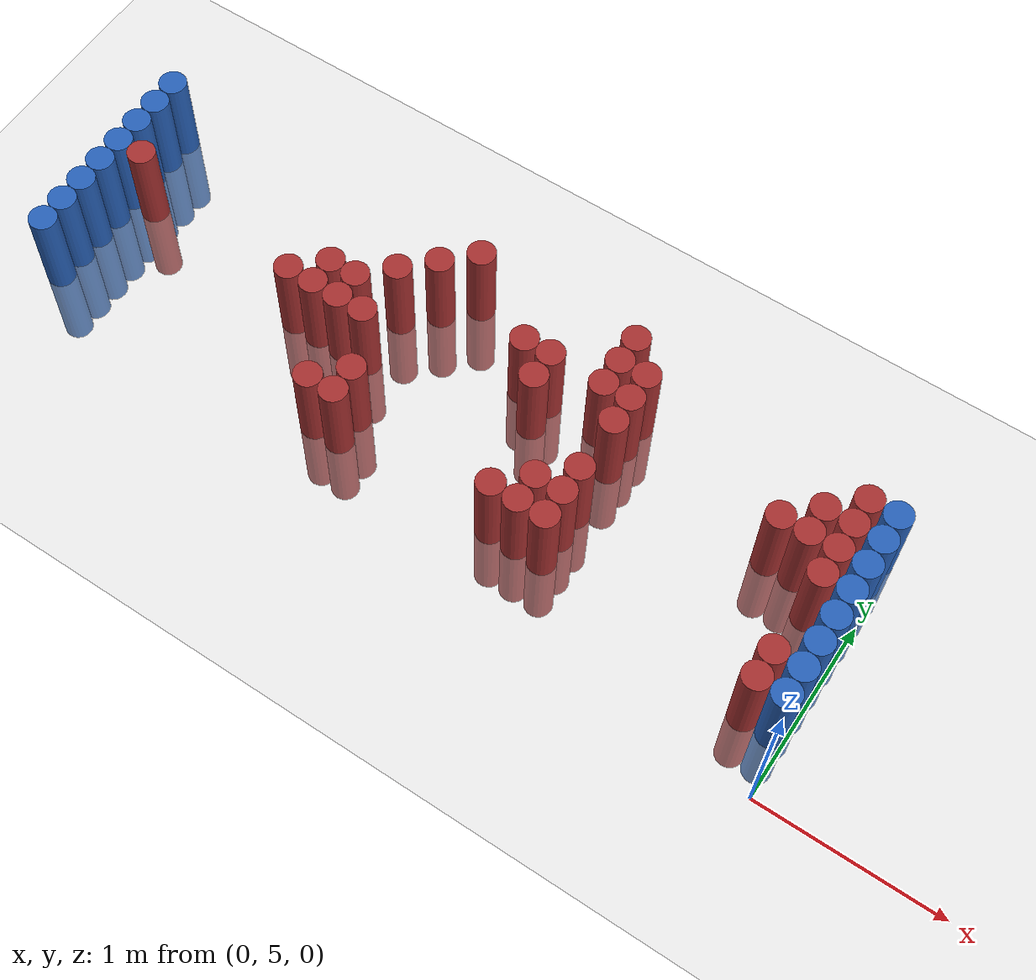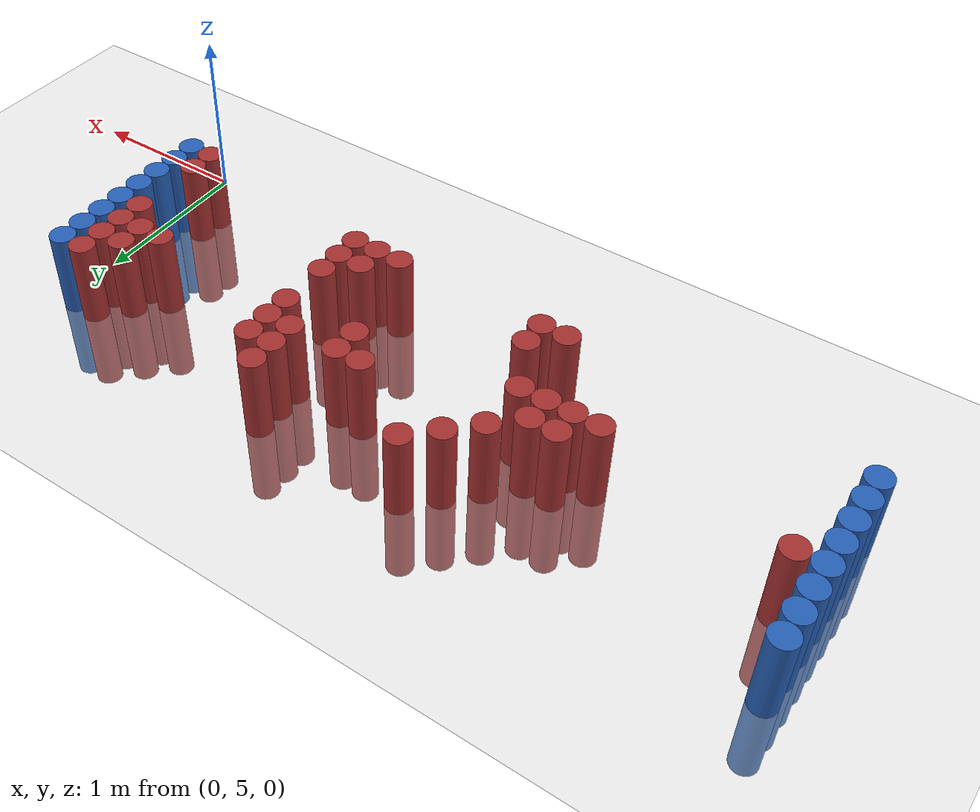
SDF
<sdf version="1.6">
 <world name="default">
  <model name="ground_plane">
   <static>1</static>
   <link name="link">
    <collision name="collision">
     <geometry><plane><normal>0 0 1</normal><size>100 100</size></plane></geometry>
     <surface><friction><ode><mu>100</mu><mu2>50</mu2></ode></friction></surface>
    </collision>
    <visual name="visual">
     <cast_shadows>0</cast_shadows>
     <geometry><plane><normal>0 0 1</normal><size>100 100</size></plane></geometry>
     <material>
      <script><uri>file://media/materials/scripts/gazebo.material</uri><name>Gazebo/Grey</name></script>
     </material>
    </visual>
   </link>
  </model>
  <model name="unit_cylinder_98">
   <static>1</static>
   <pose>-4.425000 5.475000 0.000000 0.000000 0.000000 0.000000</pose>
   <link name="link">
    <inertial>
     <mass>1</mass>
     <inertia><ixx>0.145833</ixx><ixy>0</ixy><ixz>0</ixz><iyy>0.145833</iyy><iyz>0</iyz><izz>0.125</izz></inertia>
    </inertial>
    <collision name="collision">
     <geometry><cylinder><radius>0.075000</radius><length>1</length></cylinder></geometry>
    </collision>
    <visual name="visual">
     <geometry><cylinder><radius>0.075000</radius><length>1</length></cylinder></geometry>
     <material>
      <ambient>0.152000 0.379000 0.720000 1</ambient>
      <diffuse>0.152000 0.379000 0.720000 1</diffuse>
     </material>
     <material>
      <script><name>Gazebo/Grey</name><uri>file://media/materials/scripts/gazebo.material</uri></script>
     </material>
    </visual>
   </link>
  </model>
  <model name="unit_cylinder_99">
   <static>1</static>
   <pose>-4.425000 5.625000 0.000000 0.000000 0.000000 0.000000</pose>
   <link name="link">
    <inertial>
     <mass>1</mass>
     <inertia><ixx>0.145833</ixx><ixy>0</ixy><ixz>0</ixz><iyy>0.145833</iyy><iyz>0</iyz><izz>0.125</izz></inertia>
    </inertial>
    <collision name="collision">
     <geometry><cylinder><radius>0.075000</radius><length>1</length></cylinder></geometry>
    </collision>
    <visual name="visual">
     <geometry><cylinder><radius>0.075000</radius><length>1</length></cylinder></geometry>
     <material>
      <ambient>0.152000 0.379000 0.720000 1</ambient>
      <diffuse>0.152000 0.379000 0.720000 1</diffuse>
     </material>
     <material>
      <script><name>Gazebo/Grey</name><uri>file://media/materials/scripts/gazebo.material</uri></script>
     </material>
    </visual>
   </link>
  </model>
  <model name="unit_cylinder_100">
   <static>1</static>
   <pose>-4.425000 5.775000 0.000000 0.000000 0.000000 0.000000</pose>
   <link name="link">
    <inertial>
     <mass>1</mass>
     <inertia><ixx>0.145833</ixx><ixy>0</ixy><ixz>0</ixz><iyy>0.145833</iyy><iyz>0</iyz><izz>0.125</izz></inertia>
    </inertial>
    <collision name="collision">
     <geometry><cylinder><radius>0.075000</radius><length>1</length></cylinder></geometry>
    </collision>
    <visual name="visual">
     <geometry><cylinder><radius>0.075000</radius><length>1</length></cylinder></geometry>
     <material>
      <ambient>0.152000 0.379000 0.720000 1</ambient>
      <diffuse>0.152000 0.379000 0.720000 1</diffuse>
     </material>
     <material>
      <script><name>Gazebo/Grey</name><uri>file://media/materials/scripts/gazebo.material</uri></script>
     </material>
    </visual>
   </link>
  </model>
  <model name="unit_cylinder_101">
   <static>1</static>
   <pose>-4.425000 5.925000 0.000000 0.000000 0.000000 0.000000</pose>
   <link name="link">
    <inertial>
     <mass>1</mass>
     <inertia><ixx>0.145833</ixx><ixy>0</ixy><ixz>0</ixz><iyy>0.145833</iyy><iyz>0</iyz><izz>0.125</izz></inertia>
    </inertial>
    <collision name="collision">
     <geometry><cylinder><radius>0.075000</radius><length>1</length></cylinder></geometry>
    </collision>
    <visual name="visual">
     <geometry><cylinder><radius>0.075000</radius><length>1</length></cylinder></geometry>
     <material>
      <ambient>0.152000 0.379000 0.720000 1</ambient>
      <diffuse>0.152000 0.379000 0.720000 1</diffuse>
     </material>
     <material>
      <script><name>Gazebo/Grey</name><uri>file://media/materials/scripts/gazebo.material</uri></script>
     </material>
    </visual>
   </link>
  </model>
  <model name="unit_cylinder_102">
   <static>1</static>
   <pose>-4.425000 6.075000 0.000000 0.000000 0.000000 0.000000</pose>
   <link name="link">
    <inertial>
     <mass>1</mass>
     <inertia><ixx>0.145833</ixx><ixy>0</ixy><ixz>0</ixz><iyy>0.145833</iyy><iyz>0</iyz><izz>0.125</izz></inertia>
    </inertial>
    <collision name="collision">
     <geometry><cylinder><radius>0.075000</radius><length>1</length></cylinder></geometry>
    </collision>
    <visual name="visual">
     <geometry><cylinder><radius>0.075000</radius><length>1</length></cylinder></geometry>
     <material>
      <ambient>0.152000 0.379000 0.720000 1</ambient>
      <diffuse>0.152000 0.379000 0.720000 1</diffuse>
     </material>
     <material>
      <script><name>Gazebo/Grey</name><uri>file://media/materials/scripts/gazebo.material</uri></script>
     </material>
    </visual>
   </link>
  </model>
  <model name="unit_cylinder_103">
   <static>1</static>
   <pose>-4.425000 6.225000 0.000000 0.000000 0.000000 0.000000</pose>
   <link name="link">
    <inertial>
     <mass>1</mass>
     <inertia><ixx>0.145833</ixx><ixy>0</ixy><ixz>0</ixz><iyy>0.145833</iyy><iyz>0</iyz><izz>0.125</izz></inertia>
    </inertial>
    <collision name="collision">
     <geometry><cylinder><radius>0.075000</radius><length>1</length></cylinder></geometry>
    </collision>
    <visual name="visual">
     <geometry><cylinder><radius>0.075000</radius><length>1</length></cylinder></geometry>
     <material>
      <ambient>0.152000 0.379000 0.720000 1</ambient>
      <diffuse>0.152000 0.379000 0.720000 1</diffuse>
     </material>
     <material>
      <script><name>Gazebo/Grey</name><uri>file://media/materials/scripts/gazebo.material</uri></script>
     </material>
    </visual>
   </link>
  </model>
  <model name="unit_cylinder_104">
   <static>1</static>
   <pose>-4.425000 6.375000 0.000000 0.000000 0.000000 0.000000</pose>
   <link name="link">
    <inertial>
     <mass>1</mass>
     <inertia><ixx>0.145833</ixx><ixy>0</ixy><ixz>0</ixz><iyy>0.145833</iyy><iyz>0</iyz><izz>0.125</izz></inertia>
    </inertial>
    <collision name="collision">
     <geometry><cylinder><radius>0.075000</radius><length>1</length></cylinder></geometry>
    </collision>
    <visual name="visual">
     <geometry><cylinder><radius>0.075000</radius><length>1</length></cylinder></geometry>
     <material>
      <ambient>0.152000 0.379000 0.720000 1</ambient>
      <diffuse>0.152000 0.379000 0.720000 1</diffuse>
     </material>
     <material>
      <script><name>Gazebo/Grey</name><uri>file://media/materials/scripts/gazebo.material</uri></script>
     </material>
    </visual>
   </link>
  </model>
  <model name="unit_cylinder_105">
   <static>1</static>
   <pose>-4.425000 6.525000 0.000000 0.000000 0.000000 0.000000</pose>
   <link name="link">
    <inertial>
     <mass>1</mass>
     <inertia><ixx>0.145833</ixx><ixy>0</ixy><ixz>0</ixz><iyy>0.145833</iyy><iyz>0</iyz><izz>0.125</izz></inertia>
    </inertial>
    <collision name="collision">
     <geometry><cylinder><radius>0.075000</radius><length>1</length></cylinder></geometry>
    </collision>
    <visual name="visual">
     <geometry><cylinder><radius>0.075000</radius><length>1</length></cylinder></geometry>
     <material>
      <ambient>0.152000 0.379000 0.720000 1</ambient>
      <diffuse>0.152000 0.379000 0.720000 1</diffuse>
     </material>
     <material>
      <script><name>Gazebo/Grey</name><uri>file://media/materials/scripts/gazebo.material</uri></script>
     </material>
    </visual>
   </link>
  </model>
  <model name="unit_cylinder_127">
   <static>1</static>
   <pose>-4.275000 6.075000 0.000000 0.000000 0.000000 0.000000</pose>
   <link name="link">
    <inertial>
     <mass>1</mass>
     <inertia><ixx>0.145833</ixx><ixy>0</ixy><ixz>0</ixz><iyy>0.145833</iyy><iyz>0</iyz><izz>0.125</izz></inertia>
    </inertial>
    <collision name="collision">
     <geometry><cylinder><radius>0.075000</radius><length>1</length></cylinder></geometry>
    </collision>
    <visual name="visual">
     <geometry><cylinder><radius>0.075000</radius><length>1</length></cylinder></geometry>
     <material>
      <ambient>0.648000 0.192000 0.192000 1</ambient>
      <diffuse>0.648000 0.192000 0.192000 1</diffuse>
     </material>
     <material>
      <script><name>Gazebo/Grey</name><uri>file://media/materials/scripts/gazebo.material</uri></script>
     </material>
    </visual>
   </link>
  </model>
  <model name="unit_cylinder_168">
   <static>1</static>
   <pose>-3.225000 5.925000 0.000000 0.000000 0.000000 0.000000</pose>
   <link name="link">
    <inertial>
     <mass>1</mass>
     <inertia><ixx>0.145833</ixx><ixy>0</ixy><ixz>0</ixz><iyy>0.145833</iyy><iyz>0</iyz><izz>0.125</izz></inertia>
    </inertial>
    <collision name="collision">
     <geometry><cylinder><radius>0.075000</radius><length>1</length></cylinder></geometry>
    </collision>
    <visual name="visual">
     <geometry><cylinder><radius>0.075000</radius><length>1</length></cylinder></geometry>
     <material>
      <ambient>0.648000 0.192000 0.192000 1</ambient>
      <diffuse>0.648000 0.192000 0.192000 1</diffuse>
     </material>
     <material>
      <script><name>Gazebo/Grey</name><uri>file://media/materials/scripts/gazebo.material</uri></script>
     </material>
    </visual>
   </link>
  </model>
  <model name="unit_cylinder_172">
   <static>1</static>
   <pose>-3.075000 5.925000 0.000000 0.000000 0.000000 0.000000</pose>
   <link name="link">
    <inertial>
     <mass>1</mass>
     <inertia><ixx>0.145833</ixx><ixy>0</ixy><ixz>0</ixz><iyy>0.145833</iyy><iyz>0</iyz><izz>0.125</izz></inertia>
    </inertial>
    <collision name="collision">
     <geometry><cylinder><radius>0.075000</radius><length>1</length></cylinder></geometry>
    </collision>
    <visual name="visual">
     <geometry><cylinder><radius>0.075000</radius><length>1</length></cylinder></geometry>
     <material>
      <ambient>0.648000 0.192000 0.192000 1</ambient>
      <diffuse>0.648000 0.192000 0.192000 1</diffuse>
     </material>
     <material>
      <script><name>Gazebo/Grey</name><uri>file://media/materials/scripts/gazebo.material</uri></script>
     </material>
    </visual>
   </link>
  </model>
  <model name="unit_cylinder_173">
   <static>1</static>
   <pose>-3.075000 6.075000 0.000000 0.000000 0.000000 0.000000</pose>
   <link name="link">
    <inertial>
     <mass>1</mass>
     <inertia><ixx>0.145833</ixx><ixy>0</ixy><ixz>0</ixz><iyy>0.145833</iyy><iyz>0</iyz><izz>0.125</izz></inertia>
    </inertial>
    <collision name="collision">
     <geometry><cylinder><radius>0.075000</radius><length>1</length></cylinder></geometry>
    </collision>
    <visual name="visual">
     <geometry><cylinder><radius>0.075000</radius><length>1</length></cylinder></geometry>
     <material>
      <ambient>0.648000 0.192000 0.192000 1</ambient>
      <diffuse>0.648000 0.192000 0.192000 1</diffuse>
     </material>
     <material>
      <script><name>Gazebo/Grey</name><uri>file://media/materials/scripts/gazebo.material</uri></script>
     </material>
    </visual>
   </link>
  </model>
  <model name="unit_cylinder_177">
   <static>1</static>
   <pose>-2.925000 5.925000 0.000000 0.000000 0.000000 0.000000</pose>
   <link name="link">
    <inertial>
     <mass>1</mass>
     <inertia><ixx>0.145833</ixx><ixy>0</ixy><ixz>0</ixz><iyy>0.145833</iyy><iyz>0</iyz><izz>0.125</izz></inertia>
    </inertial>
    <collision name="collision">
     <geometry><cylinder><radius>0.075000</radius><length>1</length></cylinder></geometry>
    </collision>
    <visual name="visual">
     <geometry><cylinder><radius>0.075000</radius><length>1</length></cylinder></geometry>
     <material>
      <ambient>0.648000 0.192000 0.192000 1</ambient>
      <diffuse>0.648000 0.192000 0.192000 1</diffuse>
     </material>
     <material>
      <script><name>Gazebo/Grey</name><uri>file://media/materials/scripts/gazebo.material</uri></script>
     </material>
    </visual>
   </link>
  </model>
  <model name="unit_cylinder_178">
   <static>1</static>
   <pose>-2.925000 6.075000 0.000000 0.000000 0.000000 0.000000</pose>
   <link name="link">
    <inertial>
     <mass>1</mass>
     <inertia><ixx>0.145833</ixx><ixy>0</ixy><ixz>0</ixz><iyy>0.145833</iyy><iyz>0</iyz><izz>0.125</izz></inertia>
    </inertial>
    <collision name="collision">
     <geometry><cylinder><radius>0.075000</radius><length>1</length></cylinder></geometry>
    </collision>
    <visual name="visual">
     <geometry><cylinder><radius>0.075000</radius><length>1</length></cylinder></geometry>
     <material>
      <ambient>0.648000 0.192000 0.192000 1</ambient>
      <diffuse>0.648000 0.192000 0.192000 1</diffuse>
     </material>
     <material>
      <script><name>Gazebo/Grey</name><uri>file://media/materials/scripts/gazebo.material</uri></script>
     </material>
    </visual>
   </link>
  </model>
  <model name="unit_cylinder_179">
   <static>1</static>
   <pose>-2.775000 5.475000 0.000000 0.000000 0.000000 0.000000</pose>
   <link name="link">
    <inertial>
     <mass>1</mass>
     <inertia><ixx>0.145833</ixx><ixy>0</ixy><ixz>0</ixz><iyy>0.145833</iyy><iyz>0</iyz><izz>0.125</izz></inertia>
    </inertial>
    <collision name="collision">
     <geometry><cylinder><radius>0.075000</radius><length>1</length></cylinder></geometry>
    </collision>
    <visual name="visual">
     <geometry><cylinder><radius>0.075000</radius><length>1</length></cylinder></geometry>
     <material>
      <ambient>0.648000 0.192000 0.192000 1</ambient>
      <diffuse>0.648000 0.192000 0.192000 1</diffuse>
     </material>
     <material>
      <script><name>Gazebo/Grey</name><uri>file://media/materials/scripts/gazebo.material</uri></script>
     </material>
    </visual>
   </link>
  </model>
  <model name="unit_cylinder_180">
   <static>1</static>
   <pose>-2.775000 5.925000 0.000000 0.000000 0.000000 0.000000</pose>
   <link name="link">
    <inertial>
     <mass>1</mass>
     <inertia><ixx>0.145833</ixx><ixy>0</ixy><ixz>0</ixz><iyy>0.145833</iyy><iyz>0</iyz><izz>0.125</izz></inertia>
    </inertial>
    <collision name="collision">
     <geometry><cylinder><radius>0.075000</radius><length>1</length></cylinder></geometry>
    </collision>
    <visual name="visual">
     <geometry><cylinder><radius>0.075000</radius><length>1</length></cylinder></geometry>
     <material>
      <ambient>0.648000 0.192000 0.192000 1</ambient>
      <diffuse>0.648000 0.192000 0.192000 1</diffuse>
     </material>
     <material>
      <script><name>Gazebo/Grey</name><uri>file://media/materials/scripts/gazebo.material</uri></script>
     </material>
    </visual>
   </link>
  </model>
  <model name="unit_cylinder_181">
   <static>1</static>
   <pose>-2.775000 6.225000 0.000000 0.000000 0.000000 0.000000</pose>
   <link name="link">
    <inertial>
     <mass>1</mass>
     <inertia><ixx>0.145833</ixx><ixy>0</ixy><ixz>0</ixz><iyy>0.145833</iyy><iyz>0</iyz><izz>0.125</izz></inertia>
    </inertial>
    <collision name="collision">
     <geometry><cylinder><radius>0.075000</radius><length>1</length></cylinder></geometry>
    </collision>
    <visual name="visual">
     <geometry><cylinder><radius>0.075000</radius><length>1</length></cylinder></geometry>
     <material>
      <ambient>0.648000 0.192000 0.192000 1</ambient>
      <diffuse>0.648000 0.192000 0.192000 1</diffuse>
     </material>
     <material>
      <script><name>Gazebo/Grey</name><uri>file://media/materials/scripts/gazebo.material</uri></script>
     </material>
    </visual>
   </link>
  </model>
  <model name="unit_cylinder_183">
   <static>1</static>
   <pose>-2.625000 5.475000 0.000000 0.000000 0.000000 0.000000</pose>
   <link name="link">
    <inertial>
     <mass>1</mass>
     <inertia><ixx>0.145833</ixx><ixy>0</ixy><ixz>0</ixz><iyy>0.145833</iyy><iyz>0</iyz><izz>0.125</izz></inertia>
    </inertial>
    <collision name="collision">
     <geometry><cylinder><radius>0.075000</radius><length>1</length></cylinder></geometry>
    </collision>
    <visual name="visual">
     <geometry><cylinder><radius>0.075000</radius><length>1</length></cylinder></geometry>
     <material>
      <ambient>0.648000 0.192000 0.192000 1</ambient>
      <diffuse>0.648000 0.192000 0.192000 1</diffuse>
     </material>
     <material>
      <script><name>Gazebo/Grey</name><uri>file://media/materials/scripts/gazebo.material</uri></script>
     </material>
    </visual>
   </link>
  </model>
  <model name="unit_cylinder_184">
   <static>1</static>
   <pose>-2.625000 5.625000 0.000000 0.000000 0.000000 0.000000</pose>
   <link name="link">
    <inertial>
     <mass>1</mass>
     <inertia><ixx>0.145833</ixx><ixy>0</ixy><ixz>0</ixz><iyy>0.145833</iyy><iyz>0</iyz><izz>0.125</izz></inertia>
    </inertial>
    <collision name="collision">
     <geometry><cylinder><radius>0.075000</radius><length>1</length></cylinder></geometry>
    </collision>
    <visual name="visual">
     <geometry><cylinder><radius>0.075000</radius><length>1</length></cylinder></geometry>
     <material>
      <ambient>0.648000 0.192000 0.192000 1</ambient>
      <diffuse>0.648000 0.192000 0.192000 1</diffuse>
     </material>
     <material>
      <script><name>Gazebo/Grey</name><uri>file://media/materials/scripts/gazebo.material</uri></script>
     </material>
    </visual>
   </link>
  </model>
  <model name="unit_cylinder_185">
   <static>1</static>
   <pose>-2.625000 6.375000 0.000000 0.000000 0.000000 0.000000</pose>
   <link name="link">
    <inertial>
     <mass>1</mass>
     <inertia><ixx>0.145833</ixx><ixy>0</ixy><ixz>0</ixz><iyy>0.145833</iyy><iyz>0</iyz><izz>0.125</izz></inertia>
    </inertial>
    <collision name="collision">
     <geometry><cylinder><radius>0.075000</radius><length>1</length></cylinder></geometry>
    </collision>
    <visual name="visual">
     <geometry><cylinder><radius>0.075000</radius><length>1</length></cylinder></geometry>
     <material>
      <ambient>0.648000 0.192000 0.192000 1</ambient>
      <diffuse>0.648000 0.192000 0.192000 1</diffuse>
     </material>
     <material>
      <script><name>Gazebo/Grey</name><uri>file://media/materials/scripts/gazebo.material</uri></script>
     </material>
    </visual>
   </link>
  </model>
  <model name="unit_cylinder_187">
   <static>1</static>
   <pose>-2.475000 6.525000 0.000000 0.000000 0.000000 0.000000</pose>
   <link name="link">
    <inertial>
     <mass>1</mass>
     <inertia><ixx>0.145833</ixx><ixy>0</ixy><ixz>0</ixz><iyy>0.145833</iyy><iyz>0</iyz><izz>0.125</izz></inertia>
    </inertial>
    <collision name="collision">
     <geometry><cylinder><radius>0.075000</radius><length>1</length></cylinder></geometry>
    </collision>
    <visual name="visual">
     <geometry><cylinder><radius>0.075000</radius><length>1</length></cylinder></geometry>
     <material>
      <ambient>0.648000 0.192000 0.192000 1</ambient>
      <diffuse>0.648000 0.192000 0.192000 1</diffuse>
     </material>
     <material>
      <script><name>Gazebo/Grey</name><uri>file://media/materials/scripts/gazebo.material</uri></script>
     </material>
    </visual>
   </link>
  </model>
  <model name="unit_cylinder_191">
   <static>1</static>
   <pose>-2.025000 6.225000 0.000000 0.000000 0.000000 0.000000</pose>
   <link name="link">
    <inertial>
     <mass>1</mass>
     <inertia><ixx>0.145833</ixx><ixy>0</ixy><ixz>0</ixz><iyy>0.145833</iyy><iyz>0</iyz><izz>0.125</izz></inertia>
    </inertial>
    <collision name="collision">
     <geometry><cylinder><radius>0.075000</radius><length>1</length></cylinder></geometry>
    </collision>
    <visual name="visual">
     <geometry><cylinder><radius>0.075000</radius><length>1</length></cylinder></geometry>
     <material>
      <ambient>0.648000 0.192000 0.192000 1</ambient>
      <diffuse>0.648000 0.192000 0.192000 1</diffuse>
     </material>
     <material>
      <script><name>Gazebo/Grey</name><uri>file://media/materials/scripts/gazebo.material</uri></script>
     </material>
    </visual>
   </link>
  </model>
  <model name="unit_cylinder_194">
   <static>1</static>
   <pose>-1.875000 6.075000 0.000000 0.000000 0.000000 0.000000</pose>
   <link name="link">
    <inertial>
     <mass>1</mass>
     <inertia><ixx>0.145833</ixx><ixy>0</ixy><ixz>0</ixz><iyy>0.145833</iyy><iyz>0</iyz><izz>0.125</izz></inertia>
    </inertial>
    <collision name="collision">
     <geometry><cylinder><radius>0.075000</radius><length>1</length></cylinder></geometry>
    </collision>
    <visual name="visual">
     <geometry><cylinder><radius>0.075000</radius><length>1</length></cylinder></geometry>
     <material>
      <ambient>0.648000 0.192000 0.192000 1</ambient>
      <diffuse>0.648000 0.192000 0.192000 1</diffuse>
     </material>
     <material>
      <script><name>Gazebo/Grey</name><uri>file://media/materials/scripts/gazebo.material</uri></script>
     </material>
    </visual>
   </link>
  </model>
  <model name="unit_cylinder_195">
   <static>1</static>
   <pose>-1.875000 6.225000 0.000000 0.000000 0.000000 0.000000</pose>
   <link name="link">
    <inertial>
     <mass>1</mass>
     <inertia><ixx>0.145833</ixx><ixy>0</ixy><ixz>0</ixz><iyy>0.145833</iyy><iyz>0</iyz><izz>0.125</izz></inertia>
    </inertial>
    <collision name="collision">
     <geometry><cylinder><radius>0.075000</radius><length>1</length></cylinder></geometry>
    </collision>
    <visual name="visual">
     <geometry><cylinder><radius>0.075000</radius><length>1</length></cylinder></geometry>
     <material>
      <ambient>0.648000 0.192000 0.192000 1</ambient>
      <diffuse>0.648000 0.192000 0.192000 1</diffuse>
     </material>
     <material>
      <script><name>Gazebo/Grey</name><uri>file://media/materials/scripts/gazebo.material</uri></script>
     </material>
    </visual>
   </link>
  </model>
  <model name="unit_cylinder_201">
   <static>1</static>
   <pose>-1.725000 5.475000 0.000000 0.000000 0.000000 0.000000</pose>
   <link name="link">
    <inertial>
     <mass>1</mass>
     <inertia><ixx>0.145833</ixx><ixy>0</ixy><ixz>0</ixz><iyy>0.145833</iyy><iyz>0</iyz><izz>0.125</izz></inertia>
    </inertial>
    <collision name="collision">
     <geometry><cylinder><radius>0.075000</radius><length>1</length></cylinder></geometry>
    </collision>
    <visual name="visual">
     <geometry><cylinder><radius>0.075000</radius><length>1</length></cylinder></geometry>
     <material>
      <ambient>0.648000 0.192000 0.192000 1</ambient>
      <diffuse>0.648000 0.192000 0.192000 1</diffuse>
     </material>
     <material>
      <script><name>Gazebo/Grey</name><uri>file://media/materials/scripts/gazebo.material</uri></script>
     </material>
    </visual>
   </link>
  </model>
  <model name="unit_cylinder_210">
   <static>1</static>
   <pose>-1.575000 5.475000 0.000000 0.000000 0.000000 0.000000</pose>
   <link name="link">
    <inertial>
     <mass>1</mass>
     <inertia><ixx>0.145833</ixx><ixy>0</ixy><ixz>0</ixz><iyy>0.145833</iyy><iyz>0</iyz><izz>0.125</izz></inertia>
    </inertial>
    <collision name="collision">
     <geometry><cylinder><radius>0.075000</radius><length>1</length></cylinder></geometry>
    </collision>
    <visual name="visual">
     <geometry><cylinder><radius>0.075000</radius><length>1</length></cylinder></geometry>
     <material>
      <ambient>0.648000 0.192000 0.192000 1</ambient>
      <diffuse>0.648000 0.192000 0.192000 1</diffuse>
     </material>
     <material>
      <script><name>Gazebo/Grey</name><uri>file://media/materials/scripts/gazebo.material</uri></script>
     </material>
    </visual>
   </link>
  </model>
  <model name="unit_cylinder_211">
   <static>1</static>
   <pose>-1.575000 5.625000 0.000000 0.000000 0.000000 0.000000</pose>
   <link name="link">
    <inertial>
     <mass>1</mass>
     <inertia><ixx>0.145833</ixx><ixy>0</ixy><ixz>0</ixz><iyy>0.145833</iyy><iyz>0</iyz><izz>0.125</izz></inertia>
    </inertial>
    <collision name="collision">
     <geometry><cylinder><radius>0.075000</radius><length>1</length></cylinder></geometry>
    </collision>
    <visual name="visual">
     <geometry><cylinder><radius>0.075000</radius><length>1</length></cylinder></geometry>
     <material>
      <ambient>0.648000 0.192000 0.192000 1</ambient>
      <diffuse>0.648000 0.192000 0.192000 1</diffuse>
     </material>
     <material>
      <script><name>Gazebo/Grey</name><uri>file://media/materials/scripts/gazebo.material</uri></script>
     </material>
    </visual>
   </link>
  </model>
  <model name="unit_cylinder_212">
   <static>1</static>
   <pose>-1.575000 6.225000 0.000000 0.000000 0.000000 0.000000</pose>
   <link name="link">
    <inertial>
     <mass>1</mass>
     <inertia><ixx>0.145833</ixx><ixy>0</ixy><ixz>0</ixz><iyy>0.145833</iyy><iyz>0</iyz><izz>0.125</izz></inertia>
    </inertial>
    <collision name="collision">
     <geometry><cylinder><radius>0.075000</radius><length>1</length></cylinder></geometry>
    </collision>
    <visual name="visual">
     <geometry><cylinder><radius>0.075000</radius><length>1</length></cylinder></geometry>
     <material>
      <ambient>0.648000 0.192000 0.192000 1</ambient>
      <diffuse>0.648000 0.192000 0.192000 1</diffuse>
     </material>
     <material>
      <script><name>Gazebo/Grey</name><uri>file://media/materials/scripts/gazebo.material</uri></script>
     </material>
    </visual>
   </link>
  </model>
  <model name="unit_cylinder_213">
   <static>1</static>
   <pose>-1.575000 6.375000 0.000000 0.000000 0.000000 0.000000</pose>
   <link name="link">
    <inertial>
     <mass>1</mass>
     <inertia><ixx>0.145833</ixx><ixy>0</ixy><ixz>0</ixz><iyy>0.145833</iyy><iyz>0</iyz><izz>0.125</izz></inertia>
    </inertial>
    <collision name="collision">
     <geometry><cylinder><radius>0.075000</radius><length>1</length></cylinder></geometry>
    </collision>
    <visual name="visual">
     <geometry><cylinder><radius>0.075000</radius><length>1</length></cylinder></geometry>
     <material>
      <ambient>0.648000 0.192000 0.192000 1</ambient>
      <diffuse>0.648000 0.192000 0.192000 1</diffuse>
     </material>
     <material>
      <script><name>Gazebo/Grey</name><uri>file://media/materials/scripts/gazebo.material</uri></script>
     </material>
    </visual>
   </link>
  </model>
  <model name="unit_cylinder_214">
   <static>1</static>
   <pose>-1.575000 6.525000 0.000000 0.000000 0.000000 0.000000</pose>
   <link name="link">
    <inertial>
     <mass>1</mass>
     <inertia><ixx>0.145833</ixx><ixy>0</ixy><ixz>0</ixz><iyy>0.145833</iyy><iyz>0</iyz><izz>0.125</izz></inertia>
    </inertial>
    <collision name="collision">
     <geometry><cylinder><radius>0.075000</radius><length>1</length></cylinder></geometry>
    </collision>
    <visual name="visual">
     <geometry><cylinder><radius>0.075000</radius><length>1</length></cylinder></geometry>
     <material>
      <ambient>0.648000 0.192000 0.192000 1</ambient>
      <diffuse>0.648000 0.192000 0.192000 1</diffuse>
     </material>
     <material>
      <script><name>Gazebo/Grey</name><uri>file://media/materials/scripts/gazebo.material</uri></script>
     </material>
    </visual>
   </link>
  </model>
  <model name="unit_cylinder_223">
   <static>1</static>
   <pose>-1.425000 5.475000 0.000000 0.000000 0.000000 0.000000</pose>
   <link name="link">
    <inertial>
     <mass>1</mass>
     <inertia><ixx>0.145833</ixx><ixy>0</ixy><ixz>0</ixz><iyy>0.145833</iyy><iyz>0</iyz><izz>0.125</izz></inertia>
    </inertial>
    <collision name="collision">
     <geometry><cylinder><radius>0.075000</radius><length>1</length></cylinder></geometry>
    </collision>
    <visual name="visual">
     <geometry><cylinder><radius>0.075000</radius><length>1</length></cylinder></geometry>
     <material>
      <ambient>0.648000 0.192000 0.192000 1</ambient>
      <diffuse>0.648000 0.192000 0.192000 1</diffuse>
     </material>
     <material>
      <script><name>Gazebo/Grey</name><uri>file://media/materials/scripts/gazebo.material</uri></script>
     </material>
    </visual>
   </link>
  </model>
  <model name="unit_cylinder_224">
   <static>1</static>
   <pose>-1.425000 5.625000 0.000000 0.000000 0.000000 0.000000</pose>
   <link name="link">
    <inertial>
     <mass>1</mass>
     <inertia><ixx>0.145833</ixx><ixy>0</ixy><ixz>0</ixz><iyy>0.145833</iyy><iyz>0</iyz><izz>0.125</izz></inertia>
    </inertial>
    <collision name="collision">
     <geometry><cylinder><radius>0.075000</radius><length>1</length></cylinder></geometry>
    </collision>
    <visual name="visual">
     <geometry><cylinder><radius>0.075000</radius><length>1</length></cylinder></geometry>
     <material>
      <ambient>0.648000 0.192000 0.192000 1</ambient>
      <diffuse>0.648000 0.192000 0.192000 1</diffuse>
     </material>
     <material>
      <script><name>Gazebo/Grey</name><uri>file://media/materials/scripts/gazebo.material</uri></script>
     </material>
    </visual>
   </link>
  </model>
  <model name="unit_cylinder_225">
   <static>1</static>
   <pose>-1.425000 5.775000 0.000000 0.000000 0.000000 0.000000</pose>
   <link name="link">
    <inertial>
     <mass>1</mass>
     <inertia><ixx>0.145833</ixx><ixy>0</ixy><ixz>0</ixz><iyy>0.145833</iyy><iyz>0</iyz><izz>0.125</izz></inertia>
    </inertial>
    <collision name="collision">
     <geometry><cylinder><radius>0.075000</radius><length>1</length></cylinder></geometry>
    </collision>
    <visual name="visual">
     <geometry><cylinder><radius>0.075000</radius><length>1</length></cylinder></geometry>
     <material>
      <ambient>0.648000 0.192000 0.192000 1</ambient>
      <diffuse>0.648000 0.192000 0.192000 1</diffuse>
     </material>
     <material>
      <script><name>Gazebo/Grey</name><uri>file://media/materials/scripts/gazebo.material</uri></script>
     </material>
    </visual>
   </link>
  </model>
  <model name="unit_cylinder_226">
   <static>1</static>
   <pose>-1.425000 6.075000 0.000000 0.000000 0.000000 0.000000</pose>
   <link name="link">
    <inertial>
     <mass>1</mass>
     <inertia><ixx>0.145833</ixx><ixy>0</ixy><ixz>0</ixz><iyy>0.145833</iyy><iyz>0</iyz><izz>0.125</izz></inertia>
    </inertial>
    <collision name="collision">
     <geometry><cylinder><radius>0.075000</radius><length>1</length></cylinder></geometry>
    </collision>
    <visual name="visual">
     <geometry><cylinder><radius>0.075000</radius><length>1</length></cylinder></geometry>
     <material>
      <ambient>0.648000 0.192000 0.192000 1</ambient>
      <diffuse>0.648000 0.192000 0.192000 1</diffuse>
     </material>
     <material>
      <script><name>Gazebo/Grey</name><uri>file://media/materials/scripts/gazebo.material</uri></script>
     </material>
    </visual>
   </link>
  </model>
  <model name="unit_cylinder_227">
   <static>1</static>
   <pose>-1.425000 6.225000 0.000000 0.000000 0.000000 0.000000</pose>
   <link name="link">
    <inertial>
     <mass>1</mass>
     <inertia><ixx>0.145833</ixx><ixy>0</ixy><ixz>0</ixz><iyy>0.145833</iyy><iyz>0</iyz><izz>0.125</izz></inertia>
    </inertial>
    <collision name="collision">
     <geometry><cylinder><radius>0.075000</radius><length>1</length></cylinder></geometry>
    </collision>
    <visual name="visual">
     <geometry><cylinder><radius>0.075000</radius><length>1</length></cylinder></geometry>
     <material>
      <ambient>0.648000 0.192000 0.192000 1</ambient>
      <diffuse>0.648000 0.192000 0.192000 1</diffuse>
     </material>
     <material>
      <script><name>Gazebo/Grey</name><uri>file://media/materials/scripts/gazebo.material</uri></script>
     </material>
    </visual>
   </link>
  </model>
  <model name="unit_cylinder_228">
   <static>1</static>
   <pose>-1.425000 6.375000 0.000000 0.000000 0.000000 0.000000</pose>
   <link name="link">
    <inertial>
     <mass>1</mass>
     <inertia><ixx>0.145833</ixx><ixy>0</ixy><ixz>0</ixz><iyy>0.145833</iyy><iyz>0</iyz><izz>0.125</izz></inertia>
    </inertial>
    <collision name="collision">
     <geometry><cylinder><radius>0.075000</radius><length>1</length></cylinder></geometry>
    </collision>
    <visual name="visual">
     <geometry><cylinder><radius>0.075000</radius><length>1</length></cylinder></geometry>
     <material>
      <ambient>0.648000 0.192000 0.192000 1</ambient>
      <diffuse>0.648000 0.192000 0.192000 1</diffuse>
     </material>
     <material>
      <script><name>Gazebo/Grey</name><uri>file://media/materials/scripts/gazebo.material</uri></script>
     </material>
    </visual>
   </link>
  </model>
  <model name="unit_cylinder_271">
   <static>1</static>
   <pose>-0.525000 6.075000 0.000000 0.000000 0.000000 0.000000</pose>
   <link name="link">
    <inertial>
     <mass>1</mass>
     <inertia><ixx>0.145833</ixx><ixy>0</ixy><ixz>0</ixz><iyy>0.145833</iyy><iyz>0</iyz><izz>0.125</izz></inertia>
    </inertial>
    <collision name="collision">
     <geometry><cylinder><radius>0.075000</radius><length>1</length></cylinder></geometry>
    </collision>
    <visual name="visual">
     <geometry><cylinder><radius>0.075000</radius><length>1</length></cylinder></geometry>
     <material>
      <ambient>0.648000 0.192000 0.192000 1</ambient>
      <diffuse>0.648000 0.192000 0.192000 1</diffuse>
     </material>
     <material>
      <script><name>Gazebo/Grey</name><uri>file://media/materials/scripts/gazebo.material</uri></script>
     </material>
    </visual>
   </link>
  </model>
  <model name="unit_cylinder_275">
   <static>1</static>
   <pose>-0.375000 6.075000 0.000000 0.000000 0.000000 0.000000</pose>
   <link name="link">
    <inertial>
     <mass>1</mass>
     <inertia><ixx>0.145833</ixx><ixy>0</ixy><ixz>0</ixz><iyy>0.145833</iyy><iyz>0</iyz><izz>0.125</izz></inertia>
    </inertial>
    <collision name="collision">
     <geometry><cylinder><radius>0.075000</radius><length>1</length></cylinder></geometry>
    </collision>
    <visual name="visual">
     <geometry><cylinder><radius>0.075000</radius><length>1</length></cylinder></geometry>
     <material>
      <ambient>0.648000 0.192000 0.192000 1</ambient>
      <diffuse>0.648000 0.192000 0.192000 1</diffuse>
     </material>
     <material>
      <script><name>Gazebo/Grey</name><uri>file://media/materials/scripts/gazebo.material</uri></script>
     </material>
    </visual>
   </link>
  </model>
  <model name="unit_cylinder_276">
   <static>1</static>
   <pose>-0.375000 6.225000 0.000000 0.000000 0.000000 0.000000</pose>
   <link name="link">
    <inertial>
     <mass>1</mass>
     <inertia><ixx>0.145833</ixx><ixy>0</ixy><ixz>0</ixz><iyy>0.145833</iyy><iyz>0</iyz><izz>0.125</izz></inertia>
    </inertial>
    <collision name="collision">
     <geometry><cylinder><radius>0.075000</radius><length>1</length></cylinder></geometry>
    </collision>
    <visual name="visual">
     <geometry><cylinder><radius>0.075000</radius><length>1</length></cylinder></geometry>
     <material>
      <ambient>0.648000 0.192000 0.192000 1</ambient>
      <diffuse>0.648000 0.192000 0.192000 1</diffuse>
     </material>
     <material>
      <script><name>Gazebo/Grey</name><uri>file://media/materials/scripts/gazebo.material</uri></script>
     </material>
    </visual>
   </link>
  </model>
  <model name="unit_cylinder_277">
   <static>1</static>
   <pose>-0.225000 5.325000 0.000000 0.000000 0.000000 0.000000</pose>
   <link name="link">
    <inertial>
     <mass>1</mass>
     <inertia><ixx>0.145833</ixx><ixy>0</ixy><ixz>0</ixz><iyy>0.145833</iyy><iyz>0</iyz><izz>0.125</izz></inertia>
    </inertial>
    <collision name="collision">
     <geometry><cylinder><radius>0.075000</radius><length>1</length></cylinder></geometry>
    </collision>
    <visual name="visual">
     <geometry><cylinder><radius>0.075000</radius><length>1</length></cylinder></geometry>
     <material>
      <ambient>0.648000 0.192000 0.192000 1</ambient>
      <diffuse>0.648000 0.192000 0.192000 1</diffuse>
     </material>
     <material>
      <script><name>Gazebo/Grey</name><uri>file://media/materials/scripts/gazebo.material</uri></script>
     </material>
    </visual>
   </link>
  </model>
  <model name="unit_cylinder_278">
   <static>1</static>
   <pose>-0.225000 5.475000 0.000000 0.000000 0.000000 0.000000</pose>
   <link name="link">
    <inertial>
     <mass>1</mass>
     <inertia><ixx>0.145833</ixx><ixy>0</ixy><ixz>0</ixz><iyy>0.145833</iyy><iyz>0</iyz><izz>0.125</izz></inertia>
    </inertial>
    <collision name="collision">
     <geometry><cylinder><radius>0.075000</radius><length>1</length></cylinder></geometry>
    </collision>
    <visual name="visual">
     <geometry><cylinder><radius>0.075000</radius><length>1</length></cylinder></geometry>
     <material>
      <ambient>0.648000 0.192000 0.192000 1</ambient>
      <diffuse>0.648000 0.192000 0.192000 1</diffuse>
     </material>
     <material>
      <script><name>Gazebo/Grey</name><uri>file://media/materials/scripts/gazebo.material</uri></script>
     </material>
    </visual>
   </link>
  </model>
  <model name="unit_cylinder_279">
   <static>1</static>
   <pose>-0.225000 5.925000 0.000000 0.000000 0.000000 0.000000</pose>
   <link name="link">
    <inertial>
     <mass>1</mass>
     <inertia><ixx>0.145833</ixx><ixy>0</ixy><ixz>0</ixz><iyy>0.145833</iyy><iyz>0</iyz><izz>0.125</izz></inertia>
    </inertial>
    <collision name="collision">
     <geometry><cylinder><radius>0.075000</radius><length>1</length></cylinder></geometry>
    </collision>
    <visual name="visual">
     <geometry><cylinder><radius>0.075000</radius><length>1</length></cylinder></geometry>
     <material>
      <ambient>0.648000 0.192000 0.192000 1</ambient>
      <diffuse>0.648000 0.192000 0.192000 1</diffuse>
     </material>
     <material>
      <script><name>Gazebo/Grey</name><uri>file://media/materials/scripts/gazebo.material</uri></script>
     </material>
    </visual>
   </link>
  </model>
  <model name="unit_cylinder_280">
   <static>1</static>
   <pose>-0.225000 6.075000 0.000000 0.000000 0.000000 0.000000</pose>
   <link name="link">
    <inertial>
     <mass>1</mass>
     <inertia><ixx>0.145833</ixx><ixy>0</ixy><ixz>0</ixz><iyy>0.145833</iyy><iyz>0</iyz><izz>0.125</izz></inertia>
    </inertial>
    <collision name="collision">
     <geometry><cylinder><radius>0.075000</radius><length>1</length></cylinder></geometry>
    </collision>
    <visual name="visual">
     <geometry><cylinder><radius>0.075000</radius><length>1</length></cylinder></geometry>
     <material>
      <ambient>0.648000 0.192000 0.192000 1</ambient>
      <diffuse>0.648000 0.192000 0.192000 1</diffuse>
     </material>
     <material>
      <script><name>Gazebo/Grey</name><uri>file://media/materials/scripts/gazebo.material</uri></script>
     </material>
    </visual>
   </link>
  </model>
  <model name="unit_cylinder_281">
   <static>1</static>
   <pose>-0.225000 6.225000 0.000000 0.000000 0.000000 0.000000</pose>
   <link name="link">
    <inertial>
     <mass>1</mass>
     <inertia><ixx>0.145833</ixx><ixy>0</ixy><ixz>0</ixz><iyy>0.145833</iyy><iyz>0</iyz><izz>0.125</izz></inertia>
    </inertial>
    <collision name="collision">
     <geometry><cylinder><radius>0.075000</radius><length>1</length></cylinder></geometry>
    </collision>
    <visual name="visual">
     <geometry><cylinder><radius>0.075000</radius><length>1</length></cylinder></geometry>
     <material>
      <ambient>0.648000 0.192000 0.192000 1</ambient>
      <diffuse>0.648000 0.192000 0.192000 1</diffuse>
     </material>
     <material>
      <script><name>Gazebo/Grey</name><uri>file://media/materials/scripts/gazebo.material</uri></script>
     </material>
    </visual>
   </link>
  </model>
  <model name="unit_cylinder_282">
   <static>1</static>
   <pose>-0.225000 6.375000 0.000000 0.000000 0.000000 0.000000</pose>
   <link name="link">
    <inertial>
     <mass>1</mass>
     <inertia><ixx>0.145833</ixx><ixy>0</ixy><ixz>0</ixz><iyy>0.145833</iyy><iyz>0</iyz><izz>0.125</izz></inertia>
    </inertial>
    <collision name="collision">
     <geometry><cylinder><radius>0.075000</radius><length>1</length></cylinder></geometry>
    </collision>
    <visual name="visual">
     <geometry><cylinder><radius>0.075000</radius><length>1</length></cylinder></geometry>
     <material>
      <ambient>0.648000 0.192000 0.192000 1</ambient>
      <diffuse>0.648000 0.192000 0.192000 1</diffuse>
     </material>
     <material>
      <script><name>Gazebo/Grey</name><uri>file://media/materials/scripts/gazebo.material</uri></script>
     </material>
    </visual>
   </link>
  </model>
  <model name="unit_cylinder_289">
   <static>1</static>
   <pose>-0.075000 5.325000 0.000000 0.000000 0.000000 0.000000</pose>
   <link name="link">
    <inertial>
     <mass>1</mass>
     <inertia><ixx>0.145833</ixx><ixy>0</ixy><ixz>0</ixz><iyy>0.145833</iyy><iyz>0</iyz><izz>0.125</izz></inertia>
    </inertial>
    <collision name="collision">
     <geometry><cylinder><radius>0.075000</radius><length>1</length></cylinder></geometry>
    </collision>
    <visual name="visual">
     <geometry><cylinder><radius>0.075000</radius><length>1</length></cylinder></geometry>
     <material>
      <ambient>0.152000 0.379000 0.720000 1</ambient>
      <diffuse>0.152000 0.379000 0.720000 1</diffuse>
     </material>
     <material>
      <script><name>Gazebo/Grey</name><uri>file://media/materials/scripts/gazebo.material</uri></script>
     </material>
    </visual>
   </link>
  </model>
  <model name="unit_cylinder_290">
   <static>1</static>
   <pose>-0.075000 5.475000 0.000000 0.000000 0.000000 0.000000</pose>
   <link name="link">
    <inertial>
     <mass>1</mass>
     <inertia><ixx>0.145833</ixx><ixy>0</ixy><ixz>0</ixz><iyy>0.145833</iyy><iyz>0</iyz><izz>0.125</izz></inertia>
    </inertial>
    <collision name="collision">
     <geometry><cylinder><radius>0.075000</radius><length>1</length></cylinder></geometry>
    </collision>
    <visual name="visual">
     <geometry><cylinder><radius>0.075000</radius><length>1</length></cylinder></geometry>
     <material>
      <ambient>0.152000 0.379000 0.720000 1</ambient>
      <diffuse>0.152000 0.379000 0.720000 1</diffuse>
     </material>
     <material>
      <script><name>Gazebo/Grey</name><uri>file://media/materials/scripts/gazebo.material</uri></script>
     </material>
    </visual>
   </link>
  </model>
  <model name="unit_cylinder_291">
   <static>1</static>
   <pose>-0.075000 5.625000 0.000000 0.000000 0.000000 0.000000</pose>
   <link name="link">
    <inertial>
     <mass>1</mass>
     <inertia><ixx>0.145833</ixx><ixy>0</ixy><ixz>0</ixz><iyy>0.145833</iyy><iyz>0</iyz><izz>0.125</izz></inertia>
    </inertial>
    <collision name="collision">
     <geometry><cylinder><radius>0.075000</radius><length>1</length></cylinder></geometry>
    </collision>
    <visual name="visual">
     <geometry><cylinder><radius>0.075000</radius><length>1</length></cylinder></geometry>
     <material>
      <ambient>0.152000 0.379000 0.720000 1</ambient>
      <diffuse>0.152000 0.379000 0.720000 1</diffuse>
     </material>
     <material>
      <script><name>Gazebo/Grey</name><uri>file://media/materials/scripts/gazebo.material</uri></script>
     </material>
    </visual>
   </link>
  </model>
  <model name="unit_cylinder_292">
   <static>1</static>
   <pose>-0.075000 5.775000 0.000000 0.000000 0.000000 0.000000</pose>
   <link name="link">
    <inertial>
     <mass>1</mass>
     <inertia><ixx>0.145833</ixx><ixy>0</ixy><ixz>0</ixz><iyy>0.145833</iyy><iyz>0</iyz><izz>0.125</izz></inertia>
    </inertial>
    <collision name="collision">
     <geometry><cylinder><radius>0.075000</radius><length>1</length></cylinder></geometry>
    </collision>
    <visual name="visual">
     <geometry><cylinder><radius>0.075000</radius><length>1</length></cylinder></geometry>
     <material>
      <ambient>0.152000 0.379000 0.720000 1</ambient>
      <diffuse>0.152000 0.379000 0.720000 1</diffuse>
     </material>
     <material>
      <script><name>Gazebo/Grey</name><uri>file://media/materials/scripts/gazebo.material</uri></script>
     </material>
    </visual>
   </link>
  </model>
  <model name="unit_cylinder_293">
   <static>1</static>
   <pose>-0.075000 5.925000 0.000000 0.000000 0.000000 0.000000</pose>
   <link name="link">
    <inertial>
     <mass>1</mass>
     <inertia><ixx>0.145833</ixx><ixy>0</ixy><ixz>0</ixz><iyy>0.145833</iyy><iyz>0</iyz><izz>0.125</izz></inertia>
    </inertial>
    <collision name="collision">
     <geometry><cylinder><radius>0.075000</radius><length>1</length></cylinder></geometry>
    </collision>
    <visual name="visual">
     <geometry><cylinder><radius>0.075000</radius><length>1</length></cylinder></geometry>
     <material>
      <ambient>0.152000 0.379000 0.720000 1</ambient>
      <diffuse>0.152000 0.379000 0.720000 1</diffuse>
     </material>
     <material>
      <script><name>Gazebo/Grey</name><uri>file://media/materials/scripts/gazebo.material</uri></script>
     </material>
    </visual>
   </link>
  </model>
  <model name="unit_cylinder_294">
   <static>1</static>
   <pose>-0.075000 6.075000 0.000000 0.000000 0.000000 0.000000</pose>
   <link name="link">
    <inertial>
     <mass>1</mass>
     <inertia><ixx>0.145833</ixx><ixy>0</ixy><ixz>0</ixz><iyy>0.145833</iyy><iyz>0</iyz><izz>0.125</izz></inertia>
    </inertial>
    <collision name="collision">
     <geometry><cylinder><radius>0.075000</radius><length>1</length></cylinder></geometry>
    </collision>
    <visual name="visual">
     <geometry><cylinder><radius>0.075000</radius><length>1</length></cylinder></geometry>
     <material>
      <ambient>0.152000 0.379000 0.720000 1</ambient>
      <diffuse>0.152000 0.379000 0.720000 1</diffuse>
     </material>
     <material>
      <script><name>Gazebo/Grey</name><uri>file://media/materials/scripts/gazebo.material</uri></script>
     </material>
    </visual>
   </link>
  </model>
  <model name="unit_cylinder_295">
   <static>1</static>
   <pose>-0.075000 6.225000 0.000000 0.000000 0.000000 0.000000</pose>
   <link name="link">
    <inertial>
     <mass>1</mass>
     <inertia><ixx>0.145833</ixx><ixy>0</ixy><ixz>0</ixz><iyy>0.145833</iyy><iyz>0</iyz><izz>0.125</izz></inertia>
    </inertial>
    <collision name="collision">
     <geometry><cylinder><radius>0.075000</radius><length>1</length></cylinder></geometry>
    </collision>
    <visual name="visual">
     <geometry><cylinder><radius>0.075000</radius><length>1</length></cylinder></geometry>
     <material>
      <ambient>0.152000 0.379000 0.720000 1</ambient>
      <diffuse>0.152000 0.379000 0.720000 1</diffuse>
     </material>
     <material>
      <script><name>Gazebo/Grey</name><uri>file://media/materials/scripts/gazebo.material</uri></script>
     </material>
    </visual>
   </link>
  </model>
  <model name="unit_cylinder_296">
   <static>1</static>
   <pose>-0.075000 6.375000 0.000000 0.000000 0.000000 0.000000</pose>
   <link name="link">
    <inertial>
     <mass>1</mass>
     <inertia><ixx>0.145833</ixx><ixy>0</ixy><ixz>0</ixz><iyy>0.145833</iyy><iyz>0</iyz><izz>0.125</izz></inertia>
    </inertial>
    <collision name="collision">
     <geometry><cylinder><radius>0.075000</radius><length>1</length></cylinder></geometry>
    </collision>
    <visual name="visual">
     <geometry><cylinder><radius>0.075000</radius><length>1</length></cylinder></geometry>
     <material>
      <ambient>0.152000 0.379000 0.720000 1</ambient>
      <diffuse>0.152000 0.379000 0.720000 1</diffuse>
     </material>
     <material>
      <script><name>Gazebo/Grey</name><uri>file://media/materials/scripts/gazebo.material</uri></script>
     </material>
    </visual>
   </link>
  </model>
 </world>
</sdf>
